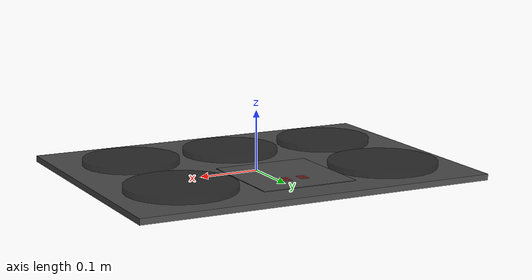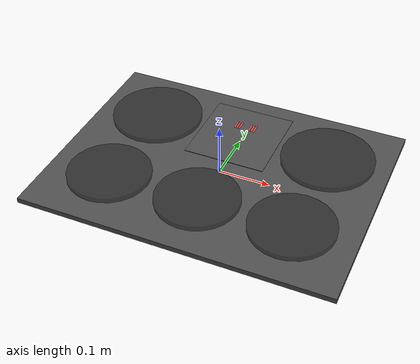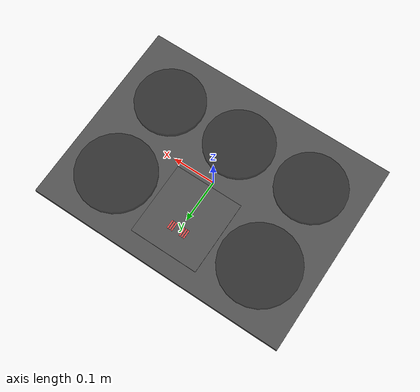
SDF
<?xml version='1.0'?>
<sdf version='1.7'>
  <model name='stove'>
    <link name='base_link'>
      <inertial>
        <mass>1</mass>
        <inertia>
          <ixx>0.166667</ixx>
          <ixy>0</ixy>
          <ixz>0</ixz>
          <iyy>0.166667</iyy>
          <iyz>0</iyz>
          <izz>0.166667</izz>
        </inertia>
        <pose>0 0 0 0 -0 0</pose>
      </inertial>
      <pose>0 0 0 0 -0 0</pose>
      <visual name='visual'>
        <pose>0 0 0.005 0 -0 0</pose>
        <geometry>
            <box>
                <size>0.6 0.45 0.01</size>
            </box>
        </geometry>
        <material>
          <diffuse>0.3 0.3 0.3 1</diffuse>
        </material>
      </visual>
      <collision name='collision'>
        <pose>0 0 0.005 0 -0 0</pose>
        <geometry>
            <box>
                <size>0.6 0.45 0.01</size>
            </box>
        </geometry>
      </collision>
    </link>
    <link name='infopad'>
      <inertial>
        <mass>1</mass>
        <inertia>
          <ixx>0.166667</ixx>
          <ixy>0</ixy>
          <ixz>0</ixz>
          <iyy>0.166667</iyy>
          <iyz>0</iyz>
          <izz>0.166667</izz>
        </inertia>
        <pose>0 0 0 0 -0 0</pose>
      </inertial>
      <pose>0 0.1 0.01005 0 -0 0</pose>
      <visual name='visual'>
        <pose>0 0 0.005 0 -0 0</pose>
        <geometry>
            <box>
                <size>0.16 0.17 0.001</size>
            </box>
        </geometry>
        <material>
          <diffuse>0.3 0.3 0.3 1</diffuse>
        </material>
      </visual>
      <visual name='line1'>
        <pose>0.02 0.03 0.0055 0 -0 0</pose>
        <geometry>
            <box>
                <size>0.003 0.02 0.001</size>
            </box>
        </geometry>
        <material>
          <diffuse>0.9 0.3 0.3 1</diffuse>
        </material>
      </visual>
      <visual name='line2'>
        <pose>0.015 0.03 0.0055 0 -0 0</pose>
        <geometry>
            <box>
                <size>0.003 0.02 0.001</size>
            </box>
        </geometry>
        <material>
          <diffuse>0.9 0.3 0.3 1</diffuse>
        </material>
      </visual>
      <visual name='line3'>
        <pose>0.01 0.03 0.0055 0 -0 0</pose>
        <geometry>
            <box>
                <size>0.003 0.02 0.001</size>
            </box>
        </geometry>
        <material>
          <diffuse>0.9 0.3 0.3 1</diffuse>
        </material>
      </visual>
      <visual name='line4'>
        <pose>0.01 0.03 0.0055 0 -0 0</pose>
        <geometry>
            <box>
                <size>0.003 0.02 0.001</size>
            </box>
        </geometry>
        <material>
          <diffuse>0.9 0.3 0.3 1</diffuse>
        </material>
      </visual>
      <visual name='line1b'>
        <pose>-0.02 0.03 0.0055 0 -0 0</pose>
        <geometry>
            <box>
                <size>0.003 0.02 0.001</size>
            </box>
        </geometry>
        <material>
          <diffuse>0.9 0.3 0.3 1</diffuse>
        </material>
      </visual>
      <visual name='line2b'>
        <pose>-0.015 0.03 0.0055 0 -0 0</pose>
        <geometry>
            <box>
                <size>0.003 0.02 0.001</size>
            </box>
        </geometry>
        <material>
          <diffuse>0.9 0.3 0.3 1</diffuse>
        </material>
      </visual>
      <visual name='line3b'>
        <pose>-0.01 0.03 0.0055 0 -0 0</pose>
        <geometry>
            <box>
                <size>0.003 0.02 0.001</size>
            </box>
        </geometry>
        <material>
          <diffuse>0.9 0.3 0.3 1</diffuse>
        </material>
      </visual>
      <visual name='line4b'>
        <pose>-0.01 0.03 0.0055 0 -0 0</pose>
        <geometry>
            <box>
                <size>0.003 0.02 0.001</size>
            </box>
        </geometry>
        <material>
          <diffuse>0.9 0.3 0.3 1</diffuse>
        </material>
      </visual>
      <collision name='collision'>
        <pose>0 0 0.005 0 -0 0</pose>
        <geometry>
            <box>
                <size>0.16 0.17 0.001</size>
            </box>
        </geometry>
      </collision>
    </link>
    <link name='burner1'>
      <inertial>
        <mass>1</mass>
        <inertia>
          <ixx>0.166667</ixx>
          <ixy>0</ixy>
          <ixz>0</ixz>
          <iyy>0.166667</iyy>
          <iyz>0</iyz>
          <izz>0.166667</izz>
        </inertia>
        <pose>0 0 0 0 -0 0</pose>
      </inertial>
      <pose>0.18 0.1 0.015 0 0 0</pose>
      <visual name='visual'>
        <pose>0 0 0 0 0 0</pose>
        <geometry>
            <cylinder>
                <length>0.01</length>
                <radius>0.09</radius>
            </cylinder>
        </geometry>
        <material>
          <diffuse>0.1 0.1 0.1 0.5</diffuse>
        </material>
      </visual>
      <collision name='collision'>
        <pose>0 0 0 0 0 0</pose>
        <geometry>
            <cylinder>
                <length>0.01</length>
                <radius>0.09</radius>
            </cylinder>
        </geometry>
      </collision>
    </link>
    <link name='burner2'>
      <inertial>
        <mass>1</mass>
        <inertia>
          <ixx>0.166667</ixx>
          <ixy>0</ixy>
          <ixz>0</ixz>
          <iyy>0.166667</iyy>
          <iyz>0</iyz>
          <izz>0.166667</izz>
        </inertia>
        <pose>0 0 0 0 -0 0</pose>
      </inertial>
      <pose>-0.18 0.1 0.015 0 0 0</pose>
      <visual name='visual'>
        <pose>0 0 0 0 0 0</pose>
        <geometry>
            <cylinder>
                <length>0.01</length>
                <radius>0.09</radius>
            </cylinder>
        </geometry>
        <material>
          <diffuse>0.1 0.1 0.1 0.5</diffuse>
        </material>
      </visual>
      <collision name='collision'>
        <pose>0 0 0 0 0 0</pose>
        <geometry>
            <cylinder>
                <length>0.01</length>
                <radius>0.09</radius>
            </cylinder>
        </geometry>
      </collision>
    </link>
    <link name='burner3'>
      <inertial>
        <mass>1</mass>
        <inertia>
          <ixx>0.166667</ixx>
          <ixy>0</ixy>
          <ixz>0</ixz>
          <iyy>0.166667</iyy>
          <iyz>0</iyz>
          <izz>0.166667</izz>
        </inertia>
        <pose>0 0 0 0 -0 0</pose>
      </inertial>
      <pose>-0.18 -0.1 0.015 0 0 0</pose>
      <visual name='visual'>
        <pose>0 0 0 0 0 0</pose>
        <geometry>
            <cylinder>
                <length>0.01</length>
                <radius>0.08</radius>
            </cylinder>
        </geometry>
        <material>
          <diffuse>0.1 0.1 0.1 0.5</diffuse>
        </material>
      </visual>
      <collision name='collision'>
        <pose>0 0 0 0 0 0</pose>
        <geometry>
            <cylinder>
                <length>0.01</length>
                <radius>0.08</radius>
            </cylinder>
        </geometry>
      </collision>
    </link>
    <link name='burner4'>
      <inertial>
        <mass>1</mass>
        <inertia>
          <ixx>0.166667</ixx>
          <ixy>0</ixy>
          <ixz>0</ixz>
          <iyy>0.166667</iyy>
          <iyz>0</iyz>
          <izz>0.166667</izz>
        </inertia>
        <pose>0 0 0 0 -0 0</pose>
      </inertial>
      <pose>0.18 -0.1 0.015 0 0 0</pose>
      <visual name='visual'>
        <pose>0 0 0 0 0 0</pose>
        <geometry>
            <cylinder>
                <length>0.01</length>
                <radius>0.08</radius>
            </cylinder>
        </geometry>
        <material>
          <diffuse>0.1 0.1 0.1 0.5</diffuse>
        </material>
      </visual>
      <collision name='collision'>
        <pose>0 0 0 0 0 0</pose>
        <geometry>
            <cylinder>
                <length>0.01</length>
                <radius>0.08</radius>
            </cylinder>
        </geometry>
      </collision>
    </link>
    <link name='burner5'>
      <inertial>
        <mass>1</mass>
        <inertia>
          <ixx>0.166667</ixx>
          <ixy>0</ixy>
          <ixz>0</ixz>
          <iyy>0.166667</iyy>
          <iyz>0</iyz>
          <izz>0.166667</izz>
        </inertia>
        <pose>0 0 0 0 -0 0</pose>
      </inertial>
      <pose>0 -0.1 0.015 0 0 0</pose>
      <visual name='visual'>
        <pose>0 0 0 0 0 0</pose>
        <geometry>
            <cylinder>
                <length>0.01</length>
                <radius>0.08</radius>
            </cylinder>
        </geometry>
        <material>
          <diffuse>0.1 0.1 0.1 0.5</diffuse>
        </material>
      </visual>
      <collision name='collision'>
        <pose>0 0 0 0 0 0</pose>
        <geometry>
            <cylinder>
                <length>0.01</length>
                <radius>0.08</radius>
            </cylinder>
        </geometry>
      </collision>
    </link>
    <joint name='burner1_joint' type='fixed'>
      <parent>base_link</parent>
      <child>burner1</child>
      <pose>0 0 0 0 -0 0</pose>
    </joint>
    <joint name='burner2_joint' type='fixed'>
      <parent>base_link</parent>
      <child>burner2</child>
      <pose>0 0 0 0 -0 0</pose>
    </joint>
    <joint name='burner3_joint' type='fixed'>
      <parent>base_link</parent>
      <child>burner3</child>
      <pose>0 0 0 0 -0 0</pose>
    </joint>
    <joint name='burner4_joint' type='fixed'>
      <parent>base_link</parent>
      <child>burner4</child>
      <pose>0 0 0 0 -0 0</pose>
    </joint>
    <joint name='burner5_joint' type='fixed'>
      <parent>base_link</parent>
      <child>burner5</child>
      <pose>0 0 0 0 -0 0</pose>
    </joint>
    <joint name='infopad_joint' type='fixed'>
      <parent>base_link</parent>
      <child>infopad</child>
      <pose>0 0 0 0 -0 0</pose>
    </joint>
  </model>
</sdf>
